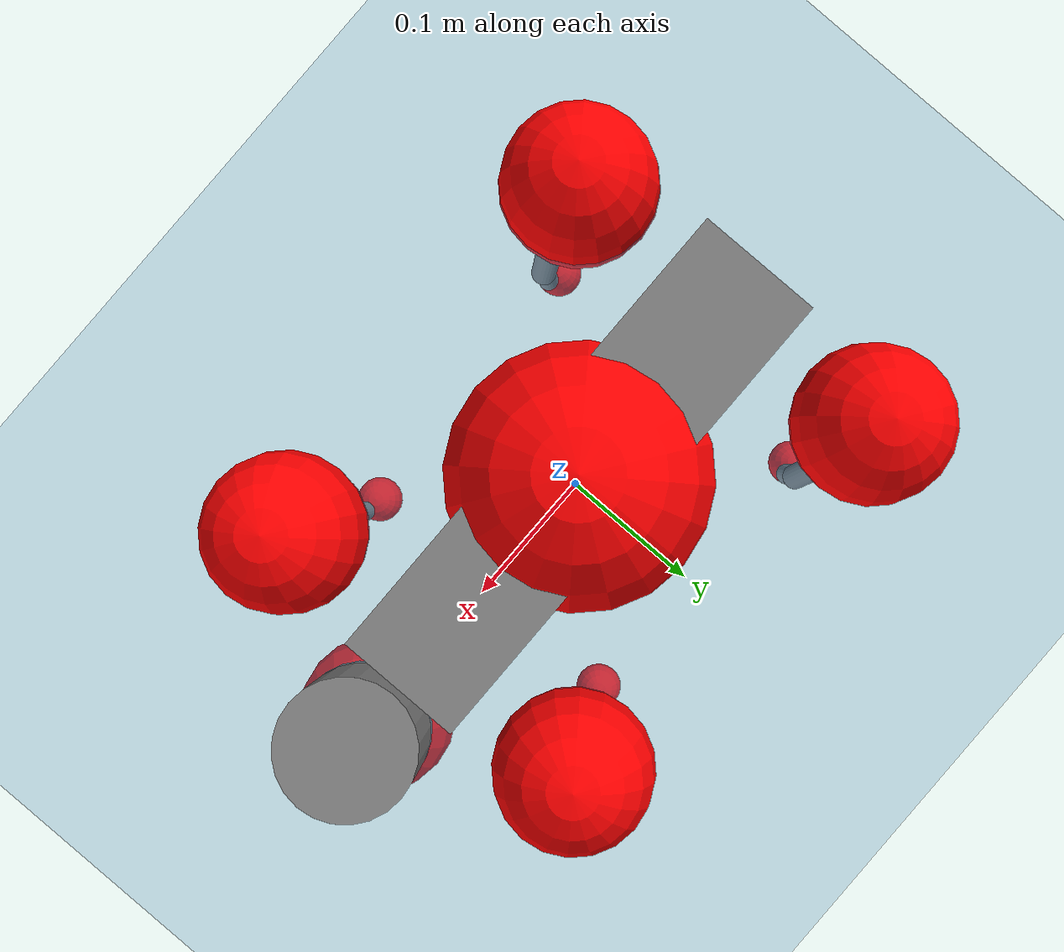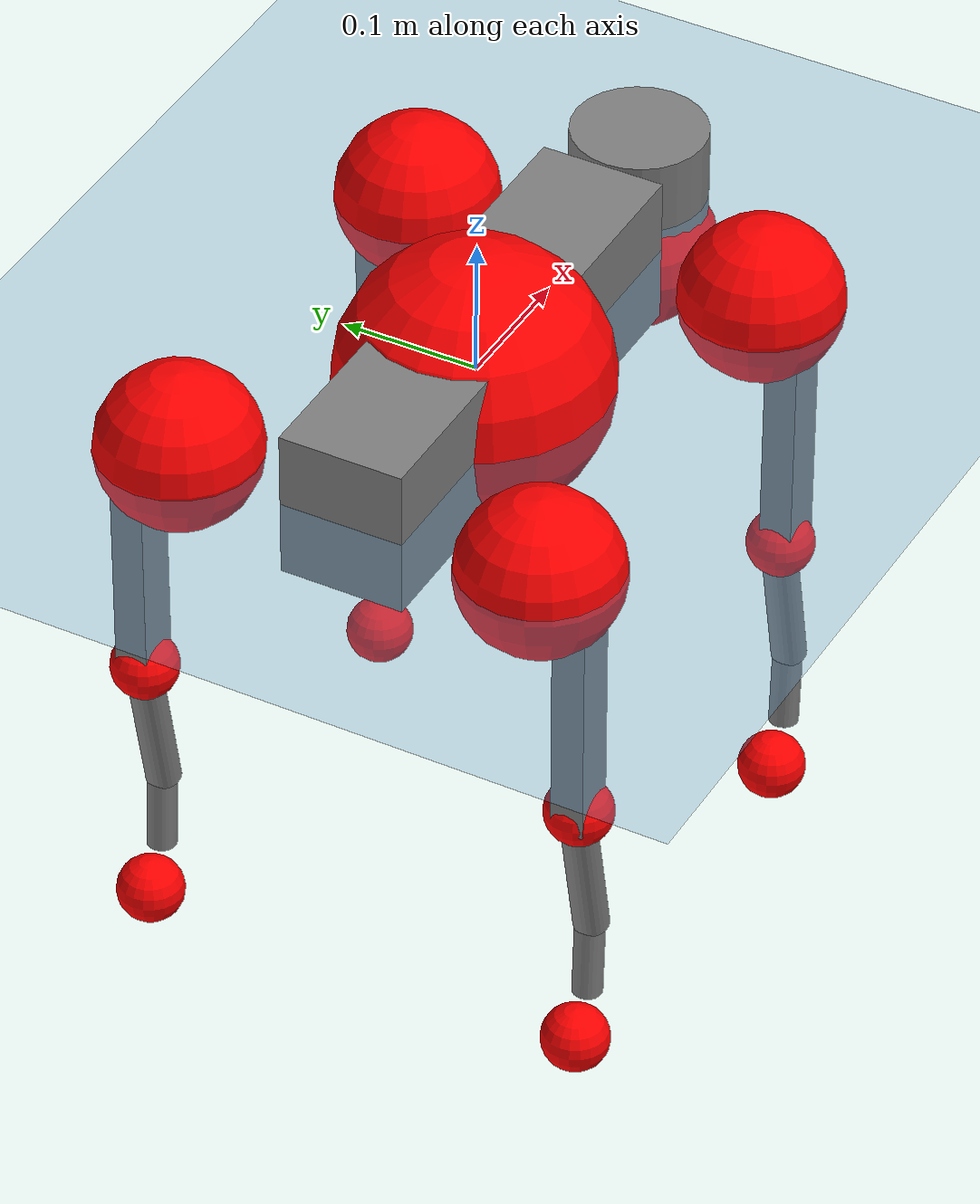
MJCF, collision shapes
<mujoco model="go2">
  <compiler angle="radian" assetdir="assets" balanceinertia="true" inertiafromgeom="false"/>

  <option timestep="0.005" density="1.2" viscosity="2e-05"/>

  <size nkey="1"/>

  <visual>
    <quality shadowsize="8192"/>
    <map shadowclip="0.5"/>
  </visual>

  <default>
    <default class="/">
      <geom contype="0" conaffinity="0" group="1" solref="-1000 -80"/>
      <site size="0.01 0.005 0.005" group="5"/>
      <general forcelimited="true" biastype="affine" gainprm="20" biasprm="0 -20 -0.5"/>
      <default class="go2">
        <joint armature="0.01" damping="0.01" frictionloss="0.2"/>
        <geom condim="1" margin="0.001"/>
        <default class="visual">
          <geom type="mesh" group="2"/>
        </default>
        <default class="collision">
          <geom group="3"/>
          <default class="foot">
            <geom size="0.022 0 0" condim="6" priority="1" friction="0.8 0.02 0.01" solimp="0.015 1 0.022"/>
          </default>
        </default>
        <default class="reward_collision_sphere">
          <geom group="5" rgba="1 0 0 1"/>
        </default>
      </default>
    </default>
  </default>

  <asset>
    <texture type="skybox" colorspace="auto" name="//unnamed_texture_0" builtin="gradient" rgb1="0.95 0.95 0.95" rgb2="0.95 0.95 0.95" width="100" height="600"/>
    <texture type="2d" colorspace="auto" name="texplane" builtin="checker" rgb1="0.345 0.575 0.748" rgb2="0.345 0.575 0.748" markrgb="1 1 1" width="512" height="512"/>
    <material name="MatPlane" class="/" texture="texplane" texuniform="true" texrepeat="2 2" specular="0.9"/>
    <material name="metal" class="/" rgba="0.9 0.95 0.95 1"/>
    <material name="black" class="/" rgba="0 0 0 1"/>
    <material name="white" class="/"/>
    <material name="gray" class="/" rgba="0.671705 0.692426 0.77427 1"/>
    <mesh name="base_0" class="/" file="base_0.obj"/>
    <mesh name="base_1" class="/" file="base_1.obj"/>
    <mesh name="base_2" class="/" file="base_2.obj"/>
    <mesh name="base_3" class="/" file="base_3.obj"/>
    <mesh name="base_4" class="/" file="base_4.obj"/>
    <mesh name="hip_0" class="/" file="hip_0.obj"/>
    <mesh name="hip_1" class="/" file="hip_1.obj"/>
    <mesh name="thigh_0" class="/" file="thigh_0.obj"/>
    <mesh name="thigh_1" class="/" file="thigh_1.obj"/>
    <mesh name="thigh_mirror_0" class="/" file="thigh_mirror_0.obj"/>
    <mesh name="thigh_mirror_1" class="/" file="thigh_mirror_1.obj"/>
    <mesh name="calf_0" class="/" file="calf_0.obj"/>
    <mesh name="calf_1" class="/" file="calf_1.obj"/>
    <mesh name="calf_mirror_0" class="/" file="calf_mirror_0.obj"/>
    <mesh name="calf_mirror_1" class="/" file="calf_mirror_1.obj"/>
    <mesh name="foot" class="/" file="foot.obj"/>
  </asset>

  <worldbody>
    <geom name="floor" class="/" size="100 100 0.125" type="plane" group="0" material="MatPlane"/>
    <light name="toplight_shadow" class="/" pos="0 0 5" dir="0.0990148 0.0990148 -0.990148" type="directional" ambient="0.04 0.04 0.04" diffuse="0.55 0.55 0.55" specular="0.12 0.12 0.12"/>
    <light name="toplight_fill" class="/" pos="0 0 5" dir="0.0990148 0.0990148 -0.990148" type="directional" castshadow="false" ambient="0.04 0.04 0.04" diffuse="0.3 0.3 0.3" specular="0.08 0.08 0.08"/>
    <body name="trunk" childclass="go2" pos="-0.00535368 -0.00126988 -0.00106867" quat="0.999998 0.00116665 -0.000284891 0.0016112">
      <inertial pos="0.0219704 0.00142987 -0.00688435" quat="-0.0118474 0.713346 -0.00680832 0.700679" mass="6.7391" diaginertia="0.0407809 0.18667 0.0178719"/>
      <joint name="//unnamed_joint_0" type="free" armature="0" damping="0" frictionloss="0"/>
      <geom name="//unnamed_geom_1" class="visual" material="black" mesh="base_0"/>
      <geom name="//unnamed_geom_2" class="visual" material="black" mesh="base_1"/>
      <geom name="//unnamed_geom_3" class="visual" material="black" mesh="base_2"/>
      <geom name="//unnamed_geom_4" class="visual" material="white" mesh="base_3"/>
      <geom name="//unnamed_geom_5" class="visual" material="gray" mesh="base_4"/>
      <geom name="trunk_1" class="collision" size="0.180911 0.0449632 0.0548215" type="box"/>
      <geom name="trunk_2" class="collision" size="0.048089 0.0432801" pos="0.233899 0 0.00930815" type="cylinder"/>
      <geom name="trunk_3" class="collision" size="0.0452037" pos="0.240464 0 -0.0558489"/>
      <geom name="//unnamed_geom_9" class="reward_collision_sphere" size="0.096178"/>
      <geom name="//unnamed_geom_10" class="reward_collision_sphere" size="0.0577068" pos="0.229795 0 -0.0418867"/>
      <site name="imu" pos="-0.0285019 0.002167 0.0213101" size="0.0096178"/>
      <camera name="track" pos="0 -2.26766 0" quat="0.707107 0.707107 0 0" mode="trackcom"/>
      <camera name="ego_camera" pos="0.256057 0 0.0418867" quat="-0.5 -0.5 0.5 0.5"/>
      <body name="FL_hip" pos="0.158289 0.0503872 0.00128638" quat="1 -0.000204805 -0.000531758 -0.000353388">
        <inertial pos="-0.00151812 0.00365328 -0.00302417" quat="0.497818 0.505844 0.503715 0.492515" mass="0.613794" diaginertia="0.000316391 0.00116171 0.000335076"/>
        <joint name="FL_hip_joint" pos="0 0 0" axis="0.999628 0.0266097 -0.00594766" range="-1.14628 1.00821" armature="0.0100045" damping="0.0136244" frictionloss="0.18646"/>
        <geom name="//unnamed_geom_11" class="visual" material="metal" mesh="hip_0"/>
        <geom name="//unnamed_geom_12" class="visual" material="gray" mesh="hip_1"/>
        <geom name="//unnamed_geom_13" class="collision" size="0.0442419 0.0192356" pos="0 0.0907063 0" quat="0.707107 0.707107 0 0" type="cylinder"/>
        <geom name="//unnamed_geom_14" class="reward_collision_sphere" size="0.0577068" pos="0 0.079368 0"/>
        <body name="FL_thigh" pos="0.000632531 0.107933 6.27277e-05" quat="0.999999 -0.000378431 -0.000863771 0.000997368">
          <inertial pos="-0.00437973 -0.0247964 -0.0266036" quat="0.82968 0.0849454 -0.019589 0.551391" mass="1.02861" diaginertia="0.00227849 0.0113195 0.000579717"/>
          <joint name="FL_thigh_joint" pos="0 0 0" axis="0.0102981 0.99994 -0.00378756" stiffness="0.029981" range="-1.54569 3.48476" armature="0.00889328" damping="0" frictionloss="0.172758"/>
          <geom name="//unnamed_geom_15" class="visual" material="metal" mesh="thigh_0"/>
          <geom name="//unnamed_geom_16" class="visual" material="gray" mesh="thigh_1"/>
          <geom name="//unnamed_geom_17" class="collision" size="0.10243 0.0117818 0.0163503" pos="0 0 -0.0991318" quat="0.707107 0 0.707107 0" type="box"/>
          <body name="FL_calf" pos="-0.000195319 0.00377268 -0.1985" quat="1 -1.06456e-05 0.000138928 9.10816e-05">
            <inertial pos="0.00757783 0.00026537 -0.132274" quat="0.706672 -0.000122522 0.00179147 0.707539" mass="0.213108" diaginertia="0.000515222 0.00253297 3.54802e-05"/>
            <joint name="FL_calf_joint" pos="0 0 0" axis="-0.00131088 0.999872 0.0159415" range="-2.6456 -0.808873" armature="0.009941" damping="0.0195703" frictionloss="0.198427"/>
            <geom name="//unnamed_geom_18" class="visual" material="gray" mesh="calf_0"/>
            <geom name="//unnamed_geom_19" class="visual" material="black" mesh="calf_1"/>
            <geom name="FL_calf0" class="collision" size="0.0115414 0.0577068" pos="0.00656557 0 -0.0558489" quat="0.994493 0 -0.104807 0" type="cylinder"/>
            <geom name="//unnamed_geom_21" class="collision" size="0.0105796 0.0312579" pos="0.0164139 0 -0.137761" quat="0.999688 0 0.0249974 0" type="cylinder"/>
            <geom name="//unnamed_geom_22" class="visual" pos="0 0 -0.198264" quat="1 0 0 0" material="black" mesh="foot"/>
            <geom name="FL_foot" class="foot" size="0.0159194" pos="-0.00164139 0 -0.198264"/>
            <geom name="//unnamed_geom_24" class="reward_collision_sphere" size="0.0240445"/>
            <geom name="//unnamed_geom_25" class="reward_collision_sphere" size="0.0240445" pos="-0.00164139 0 -0.198264"/>
            <site name="FL_foot" class="foot" pos="-0.00164139 0 -0.198264" size="0.0096178"/>
          </body>
        </body>
      </body>
      <body name="FR_hip" pos="0.162039 -0.0509696 0.00440751" quat="0.999999 0.000849927 -0.000329377 -0.000488068">
        <inertial pos="-0.0037187 0.00106516 0.000348829" quat="0.496148 0.516005 0.497443 0.490027" mass="0.610692" diaginertia="0.000334524 0.00111409 0.000336316"/>
        <joint name="FR_hip_joint" pos="0 0 0" axis="0.999995 -0.00239974 -0.00212815" range="-1.00888 1.05223" armature="0.010641" damping="0.0181892" frictionloss="0.219045"/>
        <geom name="//unnamed_geom_26" class="visual" pos="0 1.76858e-09 7.5858e-08" quat="4.63268e-05 1 0 0" material="metal" mesh="hip_0"/>
        <geom name="//unnamed_geom_27" class="visual" pos="0 2.86708e-09 -1.87626e-07" quat="4.63268e-05 1 0 0" material="gray" mesh="hip_1"/>
        <geom name="//unnamed_geom_28" class="collision" size="0.0442419 0.0192356" pos="0 -0.0907063 0" quat="0.707107 0.707107 0 0" type="cylinder"/>
        <geom name="//unnamed_geom_29" class="reward_collision_sphere" size="0.0577068" pos="0 -0.079368 0"/>
        <body name="FR_thigh" pos="-0.000436371 -0.103187 0.000618979" quat="1 -7.17162e-05 0.00039879 0.000545439">
          <inertial pos="-0.00262714 0.0270251 -0.0319788" quat="0.551127 -0.0228042 0.0852215 0.829745" mass="1.00903" diaginertia="0.00214349 0.0105225 0.000587202"/>
          <joint name="FR_thigh_joint" pos="0 0 0" axis="-0.0139301 -0.99985 -0.0103163" stiffness="0.000445244" range="-3.53704 1.52459" armature="0.00954142" damping="0.00153707" frictionloss="0.205255"/>
          <geom name="//unnamed_geom_30" class="visual" material="metal" mesh="thigh_mirror_0"/>
          <geom name="//unnamed_geom_31" class="visual" material="gray" mesh="thigh_mirror_1"/>
          <geom name="//unnamed_geom_32" class="collision" size="0.10243 0.0117818 0.0163503" pos="0 0 -0.0991318" quat="0.707107 0 0.707107 0" type="box"/>
          <body name="FR_calf" pos="-0.00247519 0.00201966 -0.200162" quat="1 8.46759e-06 5.76261e-06 -1.2853e-05">
            <inertial pos="0.00596411 0.00198401 -0.131872" quat="0.691297 -0.00431539 0.0041747 0.722546" mass="0.214064" diaginertia="0.000557363 0.00276024 3.7922e-05"/>
            <joint name="FR_calf_joint" pos="0 0 0" axis="-0.0198802 -0.999787 -0.00561738" stiffness="0.0197906" range="0.861518 2.6992" armature="0.00855111" damping="0" frictionloss="0.176585"/>
            <geom name="//unnamed_geom_33" class="visual" material="gray" mesh="calf_mirror_0"/>
            <geom name="//unnamed_geom_34" class="visual" material="black" mesh="calf_mirror_1"/>
            <geom name="FR_calf0" class="collision" size="0.0125031 0.0577068" pos="0.00820697 0 -0.0558489" quat="0.995004 0 -0.0998334 0" type="cylinder"/>
            <geom name="//unnamed_geom_36" class="collision" size="0.0105796 0.0312579" pos="0.0164139 0 -0.137761" quat="0.999688 0 0.0249974 0" type="cylinder"/>
            <geom name="//unnamed_geom_37" class="visual" pos="0 0 -0.198264" quat="1 0 0 0" material="black" mesh="foot"/>
            <geom name="FR_foot" class="foot" size="0.0210997" pos="-0.00164139 0 -0.198264"/>
            <geom name="//unnamed_geom_39" class="reward_collision_sphere" size="0.0240445"/>
            <geom name="//unnamed_geom_40" class="reward_collision_sphere" size="0.0240445" pos="-0.00164139 0 -0.198264"/>
            <site name="FR_foot" class="foot" pos="-0.00164139 0 -0.198264" size="0.0096178"/>
          </body>
        </body>
      </body>
      <body name="RL_hip" pos="-0.160144 0.0526708 0.00207156" quat="1 -0.000134095 0.000237401 0.000211219">
        <inertial pos="0.00603646 -0.00225408 0.0015121" quat="0.522888 0.480006 0.506219 0.489822" mass="0.589019" diaginertia="0.000346356 0.00115148 0.000329885"/>
        <joint name="RL_hip_joint" pos="0 0 0" axis="-0.999693 0.0247649 0.00105037" range="-1.08879 1.04541" armature="0.0106789" damping="0" frictionloss="0.159591"/>
        <geom name="//unnamed_geom_41" class="visual" pos="9.59303e-10 0 1.88046e-07" quat="4.63268e-05 0 1 0" material="metal" mesh="hip_0"/>
        <geom name="//unnamed_geom_42" class="visual" pos="1.55515e-09 0 1.6677e-07" quat="4.63268e-05 0 1 0" material="gray" mesh="hip_1"/>
        <geom name="//unnamed_geom_43" class="collision" size="0.0442419 0.0192356" pos="0 0.0907063 0" quat="0.707107 0.707107 0 0" type="cylinder"/>
        <geom name="//unnamed_geom_44" class="reward_collision_sphere" size="0.0577068" pos="0 0.079368 0"/>
        <body name="RL_thigh" pos="-0.00105634 0.111458 -0.00351459" quat="0.999999 -0.00033952 -0.000587751 0.000771303">
          <inertial pos="-0.00259343 -0.0241785 -0.0278993" quat="0.829696 0.081446 -0.0108011 0.552136" mass="0.99548" diaginertia="0.00229993 0.0116149 0.000627807"/>
          <joint name="RL_thigh_joint" pos="0 0 0" axis="-0.000390595 0.999997 0.00231278" range="-0.503985 4.54546" armature="0.00885592" damping="0.0018745" frictionloss="0.196007"/>
          <geom name="//unnamed_geom_45" class="visual" material="metal" mesh="thigh_0"/>
          <geom name="//unnamed_geom_46" class="visual" material="gray" mesh="thigh_1"/>
          <geom name="//unnamed_geom_47" class="collision" size="0.10243 0.0117818 0.0163503" pos="0 0 -0.0991318" quat="0.707107 0 0.707107 0" type="box"/>
          <body name="RL_calf" pos="-0.00019549 -0.00112265 -0.19407" quat="0.999999 0.00120186 -0.00046733 0.000321582">
            <inertial pos="0.00316382 -0.00562167 -0.130666" quat="0.71193 0.00389932 -0.00445505 0.702226" mass="0.221026" diaginertia="0.000566362 0.00284884 4.05361e-05"/>
            <joint name="RL_calf_joint" pos="0 0 0" axis="0.0238867 0.99968 -0.00828764" stiffness="0.0287633" range="-2.72311 -0.81316" armature="0.00973835" damping="0.0114136" frictionloss="0.147334"/>
            <geom name="//unnamed_geom_48" class="visual" material="gray" mesh="calf_0"/>
            <geom name="//unnamed_geom_49" class="visual" material="black" mesh="calf_1"/>
            <geom name="RL_calf0" class="collision" size="0.0125031 0.0577068" pos="0.00820697 0 -0.0558489" quat="0.995004 0 -0.0998334 0" type="cylinder"/>
            <geom name="//unnamed_geom_51" class="collision" size="0.0105796 0.0312579" pos="0.0164139 0 -0.137761" quat="0.999688 0 0.0249974 0" type="cylinder"/>
            <geom name="//unnamed_geom_52" class="visual" pos="0 0 -0.198264" quat="1 0 0 0" material="black" mesh="foot"/>
            <geom name="RL_foot" class="foot" size="0.0201826" pos="-0.00164139 0 -0.198264"/>
            <geom name="//unnamed_geom_54" class="reward_collision_sphere" size="0.0240445"/>
            <geom name="//unnamed_geom_55" class="reward_collision_sphere" size="0.0240445" pos="-0.00164139 0 -0.198264"/>
            <site name="RL_foot" class="foot" pos="-0.00164139 0 -0.198264" size="0.0096178"/>
          </body>
        </body>
      </body>
      <body name="RR_hip" pos="-0.156381 -0.0535078 -0.00438313" quat="0.999997 -0.00123407 0.00152287 0.00116373">
        <inertial pos="-0.000306295 -0.00366752 0.00444485" quat="0.500265 0.493264 0.497579 0.508764" mass="0.601032" diaginertia="0.000327695 0.00110327 0.000326041"/>
        <joint name="RR_hip_joint" pos="0 0 0" axis="-0.999676 0.025356 -0.00212134" range="-1.00584 1.09133" armature="0.00906541" damping="0" frictionloss="0.21571"/>
        <geom name="//unnamed_geom_56" class="visual" pos="-9.48463e-10 1.76858e-09 1.12188e-07" quat="2.14617e-09 4.63268e-05 4.63268e-05 -1" material="metal" mesh="hip_0"/>
        <geom name="//unnamed_geom_57" class="visual" pos="-1.58196e-09 2.86708e-09 3.54395e-07" quat="2.14617e-09 4.63268e-05 4.63268e-05 -1" material="gray" mesh="hip_1"/>
        <geom name="//unnamed_geom_58" class="collision" size="0.0442419 0.0192356" pos="0 -0.0907063 0" quat="0.707107 0.707107 0 0" type="cylinder"/>
        <geom name="//unnamed_geom_59" class="reward_collision_sphere" size="0.0577068" pos="0 -0.079368 0"/>
        <body name="RR_thigh" pos="-0.00154751 -0.108964 0.00518784" quat="1 -0.000529792 -0.000102593 0.000493336">
          <inertial pos="-0.00534836 0.0246159 -0.0303456" quat="0.550189 -0.0191408 0.087155 0.830259" mass="1.06564" diaginertia="0.00215671 0.0109083 0.000610402"/>
          <joint name="RR_thigh_joint" pos="0 0 0" axis="-0.0148392 -0.999885 0.00310683" stiffness="0.00113063" range="-4.54284 0.465027" armature="0.00871949" damping="0.0220691" frictionloss="0.216053"/>
          <geom name="//unnamed_geom_60" class="visual" material="metal" mesh="thigh_mirror_0"/>
          <geom name="//unnamed_geom_61" class="visual" material="gray" mesh="thigh_mirror_1"/>
          <geom name="//unnamed_geom_62" class="collision" size="0.10243 0.0117818 0.0163503" pos="0 0 -0.0991318" quat="0.707107 0 0.707107 0" type="box"/>
          <body name="RR_calf" pos="0.00435722 0.00137566 -0.197478" quat="1 -0.000163178 0.000328054 0.000145494">
            <inertial pos="0.00643446 0.00293183 -0.13146" quat="0.70329 -0.00288298 -4.89479e-05 0.710897" mass="0.212793" diaginertia="0.000571612 0.00276287 3.62881e-05"/>
            <joint name="RR_calf_joint" pos="0 0 0" axis="0.000384856 -0.999845 0.0175888" range="0.801747 2.74293" armature="0.00850841" damping="0" frictionloss="0.168582"/>
            <geom name="//unnamed_geom_63" class="visual" material="gray" mesh="calf_mirror_0"/>
            <geom name="//unnamed_geom_64" class="visual" material="black" mesh="calf_mirror_1"/>
            <geom name="RR_calf0" class="collision" size="0.0125031 0.0577068" pos="0.00820697 0 -0.0558489" quat="0.995004 0 -0.0998334 0" type="cylinder"/>
            <geom name="//unnamed_geom_66" class="collision" size="0.0105796 0.0312579" pos="0.0164139 0 -0.137761" quat="0.999688 0 0.0249974 0" type="cylinder"/>
            <geom name="//unnamed_geom_67" class="visual" pos="0 0 -0.198264" quat="1 0 0 0" material="black" mesh="foot"/>
            <geom name="RR_foot" class="foot" size="0.0229257" pos="-0.00164139 0 -0.198264"/>
            <geom name="//unnamed_geom_69" class="reward_collision_sphere" size="0.0240445"/>
            <geom name="//unnamed_geom_70" class="reward_collision_sphere" size="0.0240445" pos="-0.00164139 0 -0.198264"/>
            <site name="RR_foot" class="foot" pos="-0.00164139 0 -0.198264" size="0.0096178"/>
          </body>
        </body>
      </body>
    </body>
  </worldbody>

  <contact>
    <pair class="/" geom1="floor" geom2="FL_foot" name="//unnamed_contact_0"/>
    <pair class="/" geom1="floor" geom2="FR_foot" name="//unnamed_contact_1"/>
    <pair class="/" geom1="floor" geom2="RL_foot" name="//unnamed_contact_2"/>
    <pair class="/" geom1="floor" geom2="RR_foot" name="//unnamed_contact_3"/>
  </contact>

  <actuator>
    <general name="FL_hip" class="/" joint="FL_hip_joint" forcerange="-22.657 22.657" gainprm="19.333" biasprm="0 -19.333 -0.495288"/>
    <general name="FL_thigh" class="/" joint="FL_thigh_joint" forcerange="-22.349 22.349" gainprm="19.333" biasprm="0 -19.333 -0.495288"/>
    <general name="FL_calf" class="/" joint="FL_calf_joint" forcerange="-39.8322 39.8322" gainprm="19.333" biasprm="0 -19.333 -0.495288"/>
    <general name="FR_hip" class="/" joint="FR_hip_joint" forcerange="-22.4213 22.4213" gainprm="19.333" biasprm="0 -19.333 -0.495288"/>
    <general name="FR_thigh" class="/" joint="FR_thigh_joint" forcerange="-23.2693 23.2693" gainprm="19.333" biasprm="0 -19.333 -0.495288"/>
    <general name="FR_calf" class="/" joint="FR_calf_joint" forcerange="-43.9205 43.9205" gainprm="19.333" biasprm="0 -19.333 -0.495288"/>
    <general name="RL_hip" class="/" joint="RL_hip_joint" forcerange="-18.9654 18.9654" gainprm="19.333" biasprm="0 -19.333 -0.495288"/>
    <general name="RL_thigh" class="/" joint="RL_thigh_joint" forcerange="-22.1045 22.1045" gainprm="19.333" biasprm="0 -19.333 -0.495288"/>
    <general name="RL_calf" class="/" joint="RL_calf_joint" forcerange="-50.7978 50.7978" gainprm="19.333" biasprm="0 -19.333 -0.495288"/>
    <general name="RR_hip" class="/" joint="RR_hip_joint" forcerange="-23.4701 23.4701" gainprm="19.333" biasprm="0 -19.333 -0.495288"/>
    <general name="RR_thigh" class="/" joint="RR_thigh_joint" forcerange="-19.3613 19.3613" gainprm="19.333" biasprm="0 -19.333 -0.495288"/>
    <general name="RR_calf" class="/" joint="RR_calf_joint" forcerange="-48.762 48.762" gainprm="19.333" biasprm="0 -19.333 -0.495288"/>
  </actuator>

  <sensor>
    <gyro site="imu" name="imu_angular_velocity"/>
    <velocimeter site="imu" name="imu_linear_velocity"/>
    <framelinvel objtype="site" objname="FL_foot" name="FL_foot_global_linear_velocity"/>
    <framelinvel objtype="site" objname="FR_foot" name="FR_foot_global_linear_velocity"/>
    <framelinvel objtype="site" objname="RL_foot" name="RL_foot_global_linear_velocity"/>
    <framelinvel objtype="site" objname="RR_foot" name="RR_foot_global_linear_velocity"/>
  </sensor>

  <keyframe>
    <key name="home" qpos="0 0 0.325 1 0 0 0 0.1 0.8 -1.5 -0.1 -0.8 1.5 -0.1 0.8 -1.5 0.1 -0.8 1.5"/>
  </keyframe>
</mujoco>
